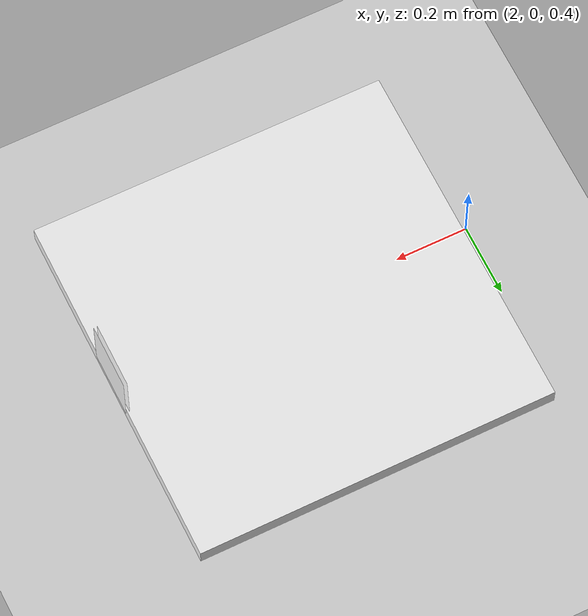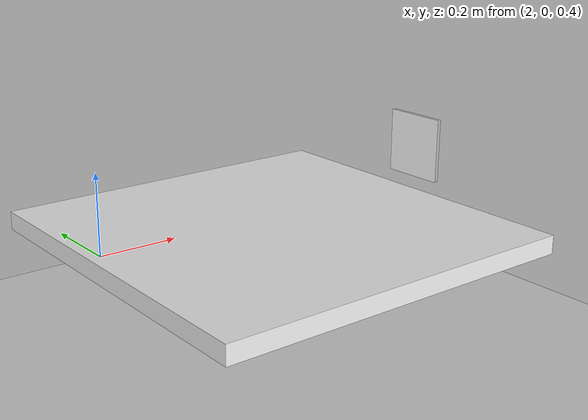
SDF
<?xml version="1.0"?>

<sdf version="1.6">
  <world name="default">

    <!-- Tweak to run at higher or lower speeds -->
    <physics name="normal" type="ode">
      <real_time_update_rate>1000</real_time_update_rate>
      <max_step_size>0.001</max_step_size>
    </physics>

    <!-- Ground plane -->
    <include>
      <uri>model://ground_plane</uri>
    </include>

    <!-- Lighting -->
    <include>
      <uri>model://sun</uri>
    </include>

    <!-- ArUco markers -->
    <model name="marker0">
      <include>
        <static>false</static>
        <uri>model://marker_0</uri>
      </include>
      <pose>2 0 0.5 0 -1.5707963267948966 0</pose>
    </model>

  </world>
</sdf>

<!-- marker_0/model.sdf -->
<sdf version='1.5'>
  <model name='marker_0'>

    <link name='marker'>
      <pose frame=''>0 0 -0.5 0 0 0</pose>
      <visual name='visual'>
        <geometry>
          <box>
            <size>0.1778 0.1778 1e-5</size>
          </box>
        </geometry>
        <material>
          <script>
            <uri>model://marker_0/materials/scripts</uri>
            <uri>model://marker_0/materials/textures</uri>
            <name>ArucoVisualMarker0/Marker</name>
          </script>
          <ambient>1 1 1 1</ambient>
          <diffuse>1 1 1 1</diffuse>
          <specular>0 0 0 1</specular>
          <emissive>1 1 1 0</emissive>
          <shader type='vertex'>
            <normal_map>__default__</normal_map>
          </shader>
        </material>
        <pose frame=''>0 0 -0.5 0 0 0</pose>
        <cast_shadows>1</cast_shadows>
        <transparency>0</transparency>
      </visual>
      <collision name='collision'>
        <laser_retro>0</laser_retro>
        <max_contacts>10</max_contacts>
        <geometry>
          <box>
            <size>0.1778 0.1778 1e-05</size>
          </box>
        </geometry>
      </collision>
    </link>

    <link name='marker_pad'>
      <pose frame='marker'>0 0 -0.51 0 0 0</pose>
      <visual name='visual'>
        <geometry>
          <box>
            <size>0.1778 0.1778 1e-5</size>
          </box>
        </geometry>
        <material>
          <lighting>1</lighting>
          <script>
            <uri>file://media/materials/scripts/gazebo.material</uri>
            <name>Gazebo/White</name>
          </script>
          <ambient>0.3 0.3 0.3 1</ambient>
          <diffuse>0.7 0.7 0.7 1</diffuse>
          <specular>0.01 0.01 0.01 1</specular>
          <emissive>1 1 1 0</emissive>
          <shader type='vertex'>
            <normal_map>__default__</normal_map>
          </shader>
        </material>
        <cast_shadows>1</cast_shadows>
        <transparency>0</transparency>
      </visual>
      <collision name='collision'>
        <laser_retro>0</laser_retro>
        <max_contacts>10</max_contacts>
        <geometry>
          <box>
            <size>0.1778 0.1778 1e-5</size>
          </box>
        </geometry>
      </collision>
    </link>

     <link name='marker_platform'>
      <pose frame='marker'>-0.15 0 0.0 0 1.57 0</pose>
      <visual name='visual'>
        <geometry>
          <box>
            <size>1.0 1.0 0.05</size>
          </box>
        </geometry>
        <material>
          <lighting>1</lighting>
          <script>
            <uri>file://media/materials/scripts/gazebo.material</uri>
            <name>Gazebo/White</name>
          </script>
          <ambient>0.3 0.3 0.3 1</ambient>
          <diffuse>0.7 0.7 0.7 1</diffuse>
          <specular>0.01 0.01 0.01 1</specular>
          <emissive>1 1 1 0</emissive>
          <shader type='vertex'>
            <normal_map>__default__</normal_map>
          </shader>
        </material>
        <cast_shadows>1</cast_shadows>
        <transparency>0</transparency>
      </visual>
      <collision name='collision'>
        <laser_retro>0</laser_retro>
        <max_contacts>10</max_contacts>
        <geometry>
          <box>
            <size>1.0 1.0 0.05</size>
          </box>
        </geometry>
        <surface>
          <friction>
            <ode>
              <mu>2.0</mu>
              <mu2>2.0</mu2>
              <fdir1>0 0 1</fdir1>
              <slip1>0.0</slip1>
              <slip2>0.0</slip2>
            </ode>
            <torsional>
              <coefficient>1.0</coefficient>
              <surface_radius>0.05</surface_radius>
              <use_patch_radius>true</use_patch_radius>
            </torsional>
          </friction>
        </surface>
      </collision>
      <inertial>
        <mass>1</mass>
        <inertia>
          <ixx>0.0021</ixx>
          <ixy>0</ixy>
          <ixz>0</ixz>
          <iyy>0.0021</iyy>
          <iyz>0</iyz>
          <izz>0.0042</izz>
        </inertia>
      </inertial>
    </link>

    <joint name='marker_JOINT_marker_pad' type='revolute'>
      <parent>marker</parent>
      <child>marker_pad</child>
      <pose frame=''>0 0 -1.0 0 0 0</pose>
      <axis>
        <xyz>0 0 1</xyz>
        <limit>
          <upper>0</upper>
          <lower>0</lower>
        </limit>
      </axis>
    </joint>

    <joint name='marker_platform_JOINT_marker' type='fixed'>
      <parent>marker_platform</parent>
      <child>marker</child>
    </joint>

    <plugin name="model_push" filename="libgazebo_ros_planar_move.so">
      <commandTopic>marker_cmd_vel</commandTopic>
      <odometryTopic>marker_odom</odometryTopic>
      <odometryFrame>marker_odom</odometryFrame>
      <odometryRate>20.0</odometryRate>
      <robotBaseFrame>marker_platform</robotBaseFrame>
    </plugin>

    <static>0</static>
    <allow_auto_disable>1</allow_auto_disable>

  </model>
</sdf>
